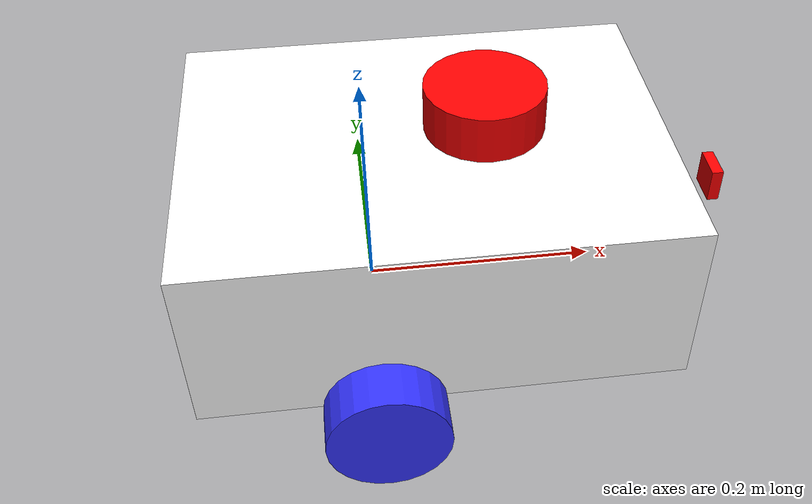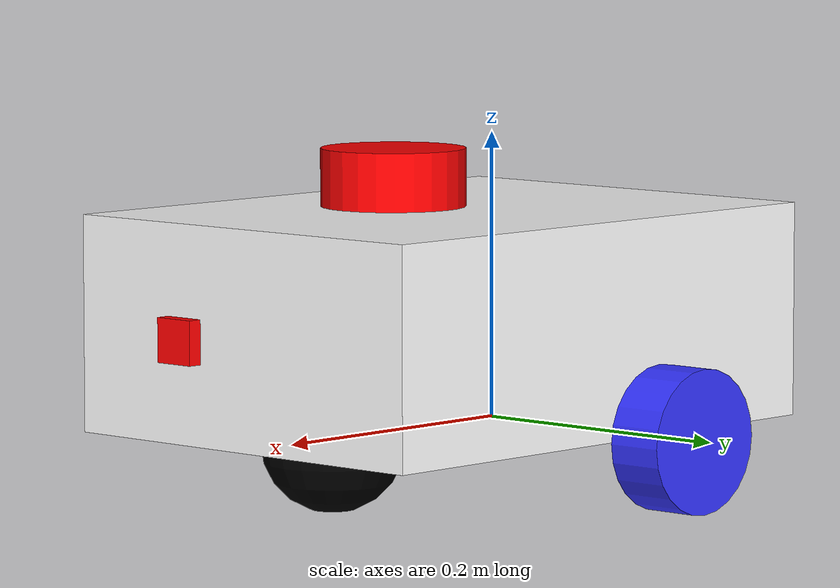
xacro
<?xml version="1.0"?>
<robot xmlns:xacro="http://www.ros.org/wiki/xacro"  name="robot">

    <xacro:include filename="robot_core.xacro" />

    <xacro:include filename="ros2_control.xacro" />

    <xacro:include filename="lidar.xacro" />

    <xacro:include filename="camera.xacro" />

</robot>

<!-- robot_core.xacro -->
<robot xmlns:xacro="http://www.ros.org/wiki/xacro" >

    <xacro:include filename="inertial_macros.xacro" />

    <material name="white">
        <color rgba="1 1 1 1" />
    </material>

    <material name="orange">
        <color rgba="1 0.3 0.1 1" />
    </material>

    <material name="blue">
        <color rgba="0.2 0.2 1 1" />
    </material>

    <material name="black">
        <color rgba="0 0 0 1" />
    </material>

    <material name="red">
        <color rgba="1 0 0 1" />
    </material>

    <!-- BASE LINK -->

    <link name="base_link">

    </link>

    <!-- CHASSIS LINK -->

    <link name="chassis">
        <visual>
            <geometry>
                <box size="0.4 0.3 0.15" />
            </geometry>
            <origin xyz="0.15 0 0.075" />
            <material name="white" />
        </visual>

        <collision>
            <geometry>
                <box size="0.4 0.3 0.15" />
            </geometry>
            <origin xyz="0.15 0 0.075" />
        </collision>

        <xacro:inertial_box mass="0.5" x="0.3" y="0.3" z="0.15">
            <origin xyz="0.15 0 0.075" rpy="0 0 0" />
        </xacro:inertial_box>
    </link>

    <gazebo reference="chassis">
        <material>Gazebo/White</material>
    </gazebo>

    <!-- LEFT WHEEL LINK -->

    <link name="left_wheel">
        <visual>
            <geometry>
                <cylinder radius="0.05" length="0.04" />
            </geometry>
            <material name="blue" />
        </visual>

        <collision>
            <geometry>
                <cylinder radius="0.05" length="0.04" />
            </geometry>
        </collision>

        <xacro:inertial_cylinder mass="0.1" radius="0.05" length="0.04">
            <origin xyz="0 0 0" rpy="0 0 0" />
        </xacro:inertial_cylinder>
    </link>

    <gazebo reference="left_wheel">
        <material>Gazebo/Blue</material>
        <mu1>1.0</mu1>
        <mu2>1.0</mu2>
    </gazebo>

    <!-- RIGHT WHEEL LINK -->

    <link name="right_wheel">
        <visual>
            <geometry>
                <cylinder radius="0.05" length="0.04" />
            </geometry>
            <material name="blue" />
        </visual>

        <collision>
            <geometry>
                <cylinder radius="0.05" length="0.04" />
            </geometry>
        </collision>

        <xacro:inertial_cylinder mass="0.1" radius="0.05" length="0.04">
            <origin xyz="0 0 0" rpy="0 0 0" />
        </xacro:inertial_cylinder>
    </link>

    <gazebo reference="right_wheel">
        <material>Gazebo/Blue</material>
        <mu1>1.0</mu1>
        <mu2>1.0</mu2>
    </gazebo>

    <!-- CASTER WHEEL LINK-->

    <link name="caster_wheel">
        <visual>
            <geometry>
                <sphere radius="0.05" />
            </geometry>
            <material name="black" />
        </visual>

        <collision>
            <geometry>
                <sphere radius="0.05" />
            </geometry>
        </collision>

        <xacro:inertial_sphere mass="0.1" radius="0.05">
            <origin xyz="0 0 0" rpy="0 0 0" />
        </xacro:inertial_sphere>
    </link>

    <gazebo reference="caster_wheel">
        <material>Gazebo/Black</material>
        <mu1>0.0</mu1>
        <mu2>0.0</mu2>
    </gazebo>

    <!-- CHASSIS JOINT -->

    <joint name="base_chassis_joint" type="fixed">
        <parent link="base_link" />
        <child link="chassis" />
        <origin xyz="-0.1 0 0" />
    </joint>

    <!-- LEFT WHEEL JOINT -->

    <joint name="base_left_wheel_joint" type="continuous">
        <parent link="base_link" />
        <child link="left_wheel" />
        <origin xyz="0 0.175 0" rpy="-${pi/2} 0 0" />
        <axis xyz="0 0 1" />
    </joint>

    <!-- RIGHT WHEEL JOINT -->

    <joint name="base_right_wheel_joint" type="continuous">
        <parent link="base_link" />
        <child link="right_wheel" />
        <origin xyz="0 -0.175 0" rpy="${pi/2} 0 0" />
        <axis xyz="0 0 -1" />
    </joint>

    <!-- CASTER WHEEL JOINT-->

    <joint name="base_caster_wheel_joint" type="fixed">
        <parent link="base_link" />
        <child link="caster_wheel" />
        <origin xyz="0.16 0 0" />
    </joint>

</robot>

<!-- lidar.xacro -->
<robot xmlns:xacro="http://www.ros.org/wiki/xacro" >

    <link name="lidar_link">
        <visual>
            <geometry>
                <cylinder radius="0.05" length="0.04" />
            </geometry>
            <material name="red" />
        </visual>

        <collision>
            <geometry>
                <cylinder radius="0.05" length="0.04" />
            </geometry>
        </collision>

        <xacro:inertial_cylinder mass="0.1" radius="0.05" length="0.04">
            <origin xyz="0 0 0" rpy="0 0 0" />
        </xacro:inertial_cylinder>
    </link>

    <joint name="lidar_joint" type="fixed">
        <parent link="base_link" />
        <child link="lidar_link" />
        <origin xyz="0.1 0 0.175" rpy="0 0 0" />
    </joint>

    <gazebo reference="lidar_link">
        <material>Gazebo/Red</material>

        <sensor name="gpu_lidar" type="gpu_lidar">
            <pose>0 0 0 0 0 0</pose>
            <topic>scan</topic>
            <update_rate>10</update_rate>
            <gz_frame_id>lidar_link</gz_frame_id>

            <lidar>
                <scan>
                    <horizontal>
                        <samples>360</samples>
                        <min_angle>-3.14</min_angle>
                        <max_angle>3.14</max_angle>
                    </horizontal>
                </scan>

                <range>
                    <min>0.3</min>
                    <max>12</max>
                </range>

                <noise>
                    <type>gaussian</type>
                    <mean>0.0</mean>
                    <stddev>0.001</stddev>
                </noise>
            </lidar>

            <always_on>true</always_on>
            <visualize>true</visualize>
        </sensor>
    </gazebo>

    <gazebo reference="lidar_joint">
        <preserveFixedJoint>true</preserveFixedJoint>
    </gazebo>

</robot>

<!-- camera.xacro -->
<robot xmlns:xacro="http://www.ros.org/wiki/xacro" >

    <link name="camera_link">
        <visual>
            <geometry>
                <box  size="0.010 0.03  0.03"/>
            </geometry>
            <material name="red" />
        </visual>
    </link>

    <joint name="camera_joint" type="fixed">
        <parent link="chassis" />
        <child link="camera_link" />
        <origin xyz="0.405 0 0.08" rpy="0 0 0" />
    </joint>

    <joint name="camera_joint_optical" type="fixed">
        <parent link="camera_link" />
        <child link="camera_link_optical" />
        <origin xyz="0 0 0" rpy="${-pi/2} 0 ${-pi/2}" />
    </joint>

    <link name="camera_link_optical"></link>

    <gazebo reference="camera_link">
        <material>Gazebo/Red</material>

        <sensor name="camera_front" type="camera">
            <pose>0 0 0 0 0 0</pose>
            <visualize>true</visualize>
            <topic>camera/image_raw</topic>
            <gz_frame_id>camera_link_optical</gz_frame_id>
            <always_on>1</always_on>
            <update_rate>25</update_rate>
            <camera name="camera_front">
                <horizontal_fov>1.658</horizontal_fov>
                <lens>
                    <intrinsics>
                    <!-- fx = fy = width / ( 2 * tan (hfov / 2 ) ) -->
                    <fx>329.9</fx>
                    <fy>329.9</fy>
                    <!-- cx = ( width - 1 ) / 2 -->
                    <cx>359.5</cx>
                    <!-- cy = ( height - 1 ) / 2 -->
                    <cy>539.5</cy>
                    <s>0</s>
                    </intrinsics>
                </lens>
                <distortion>
                    <k1>0.0</k1>
                    <k2>0.0</k2>
                    <k3>0.0</k3>
                    <p1>0.0</p1>
                    <p2>0.0</p2>
                    <center>0.5 0.5</center>
                </distortion>
                <image>
                    <width>720</width>
                    <height>1080</height>
                    <format>R8G8B8</format>
                </image>
                <clip>
                    <near>0.01</near>
                    <far>300</far>
                </clip>
                <noise>
                    <type>gaussian</type>
                    <mean>0</mean>
                    <stddev>0.007</stddev>
                </noise>
            </camera>
       </sensor>
    </gazebo>

</robot>
